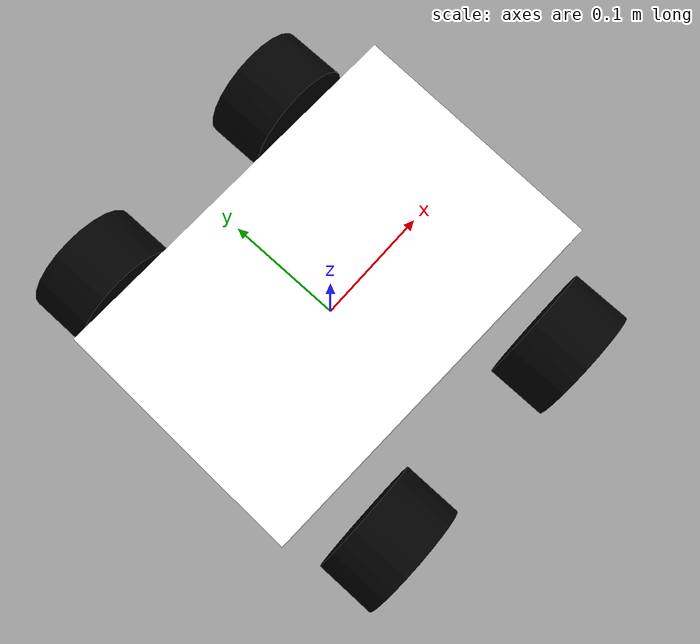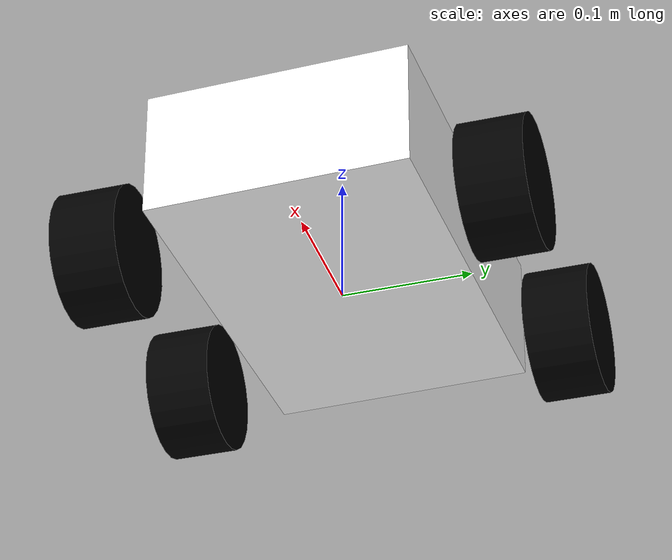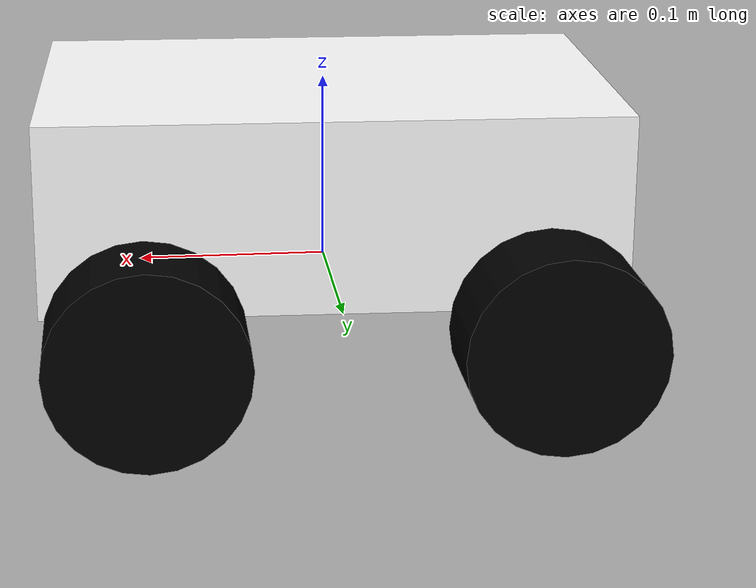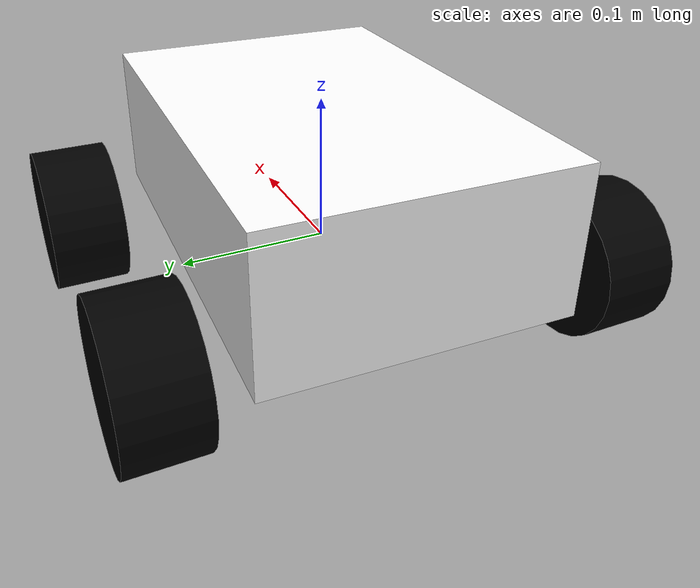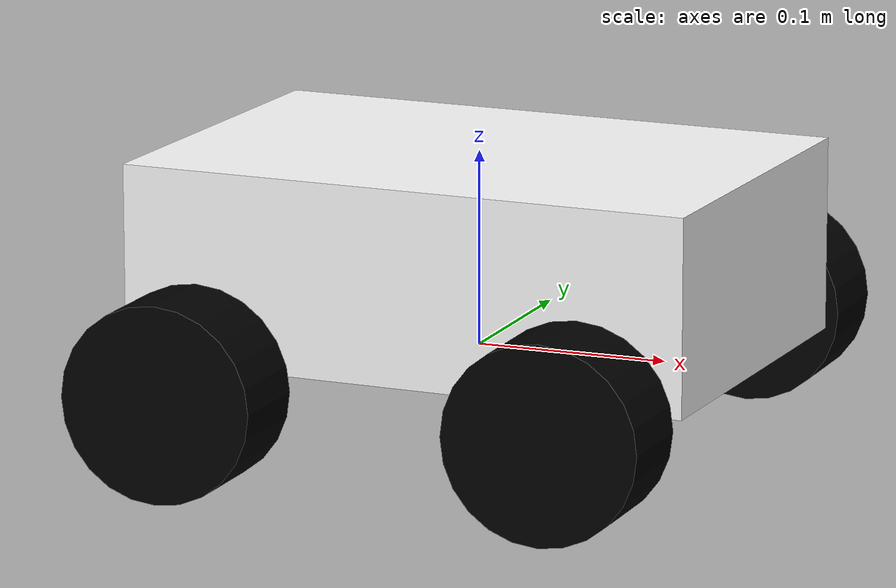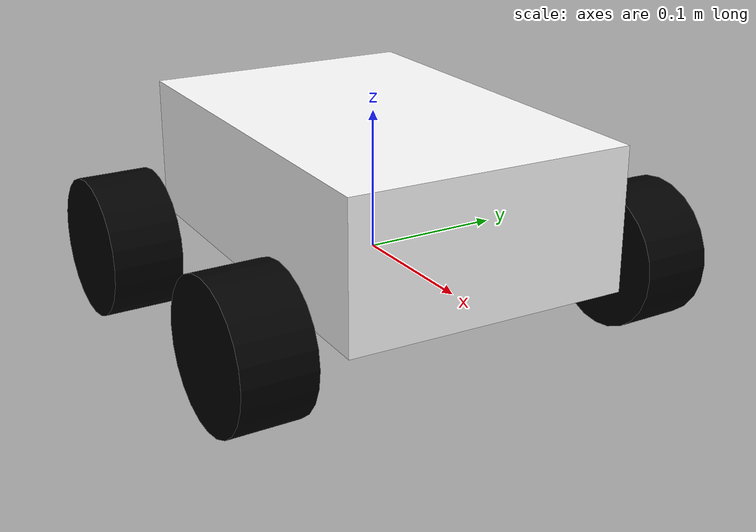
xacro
<?xml version="1.0"?>

<robot xmlns:xacro="http://www.ros.org/wiki/xacro"
       xmlns:sensor="http://playerstage.sourceforge.net/gazebo/xmlschema/#sensor"
       xmlns:controller="http://playerstage.sourceforge.net/gazebo/xmlschema/#controller"
       xmlns:interface="http://playerstage.sourceforge.net/gazebo/xmlschema/#interface"
       name="robot1_xacro">

    <xacro:property name="length_wheel" value="0.05" />
    <xacro:property name="radius_wheel" value="0.05" />
    <xacro:macro name="default_inertial" params="mass">
        <inertial>
            <mass value="${mass}" />
            <inertia ixx="1.0" ixy="0.0" ixz="0.0"
                     iyy="1.0" iyz="0.0"
                     izz="1.0" />
        </inertial>
    </xacro:macro>

    <link name="base_link">
        <visual>
            <geometry>
                <box size="0.2 .3 .1"/>
            </geometry>
            <origin rpy="0 0 1.54" xyz="0 0 0.05"/>
            <material name="white">
                <color rgba="1 1 1 1"/>
            </material>
        </visual>
        <collision>
            <geometry>
                <box size="0.2 .3 0.1"/>
            </geometry>
        </collision>
        <xacro:default_inertial mass="10"/>
    </link>

    <link name="wheel_1">
        <visual>
            <geometry>
                <cylinder length="${length_wheel}" radius="${radius_wheel}"/>
            </geometry>
            <origin rpy="0 0 0" xyz="0 0 0"/>
            <material name="black">
                <color rgba="0 0 0 1"/>
            </material>
        </visual>
        <collision>
            <geometry>
                <cylinder length="${length_wheel}" radius="${radius_wheel}"/>
            </geometry>
        </collision>
        <xacro:default_inertial mass="1"/>
    </link>

    <link name="wheel_2">
        <visual>
            <geometry>
                <cylinder length="${length_wheel}" radius="${radius_wheel}"/>
            </geometry>
            <origin rpy="0 0 0" xyz="0 0 0"/>
            <material name="black"/>
        </visual>
        <collision>
            <geometry>
                <cylinder length="${length_wheel}" radius="${radius_wheel}"/>
            </geometry>
        </collision>
        <xacro:default_inertial mass="1"/>
    </link>

    <link name="wheel_3">
        <visual>
            <geometry>
                <cylinder length="${length_wheel}" radius="${radius_wheel}"/>
            </geometry>
            <origin rpy="0 0 0" xyz="0 0 0"/>
            <material name="black"/>
        </visual>
        <collision>
            <geometry>
                <cylinder length="${length_wheel}" radius="${radius_wheel}"/>
            </geometry>
        </collision>
        <xacro:default_inertial mass="1"/>
    </link>

    <link name="wheel_4">
        <visual>
            <geometry>
                <cylinder length="${length_wheel}" radius="${radius_wheel}"/>
            </geometry>
            <origin rpy="0 0 0" xyz="0 0 0" />
            <material name="black"/>
        </visual>
        <collision>
            <geometry>
                <cylinder length="${length_wheel}" radius="${radius_wheel}"/>
            </geometry>
        </collision>
        <xacro:default_inertial mass="1"/>
    </link>

    <joint name="base_to_wheel1" type="continuous">
        <parent link="base_link"/>
        <child link="wheel_1"/>
        <origin rpy="1.5707 0 0" xyz="0.1 0.15 0"/>
        <axis xyz="0 0 1" />
    </joint>

    <joint name="base_to_wheel2" type="continuous">
        <axis xyz="0 0 1" />
        <anchor xyz="0 0 0" />
        <limit effort="100" velocity="100" />
        <parent link="base_link"/>
        <child link="wheel_2"/>
        <origin rpy="1.5707 0 0" xyz="-0.1 0.15 0"/>
    </joint>

    <joint name="base_to_wheel3" type="continuous">
        <parent link="base_link"/>
        <axis xyz="0 0 1" />
        <child link="wheel_3"/>
        <origin rpy="1.5707 0 0" xyz="0.1 -0.15 0"/>
    </joint>

    <joint name="base_to_wheel4" type="continuous">
        <parent link="base_link"/>
        <axis xyz="0 0 1" />
        <child link="wheel_4"/>
        <origin rpy="1.5707 0 0" xyz="-0.1 -0.15 0"/>
    </joint>

</robot>
